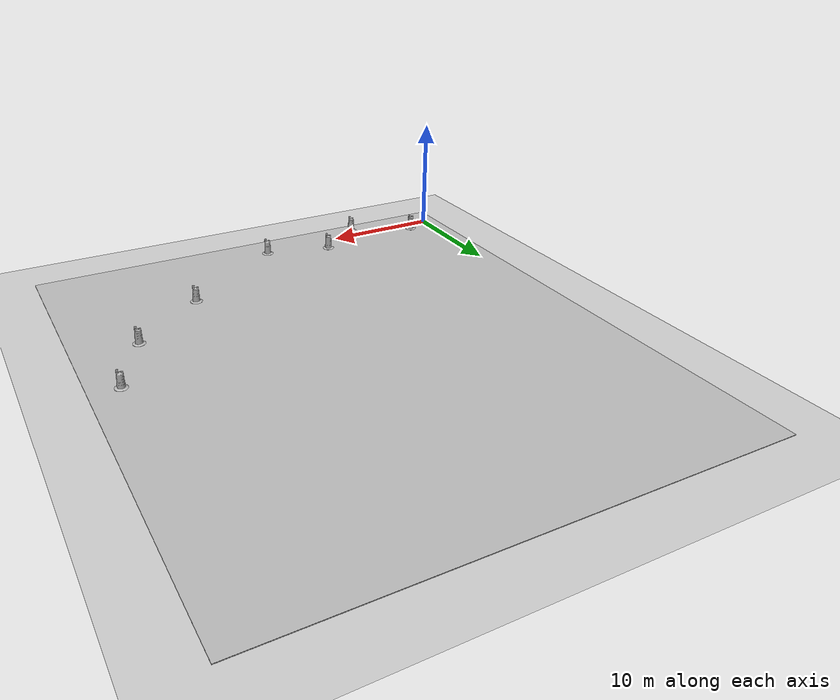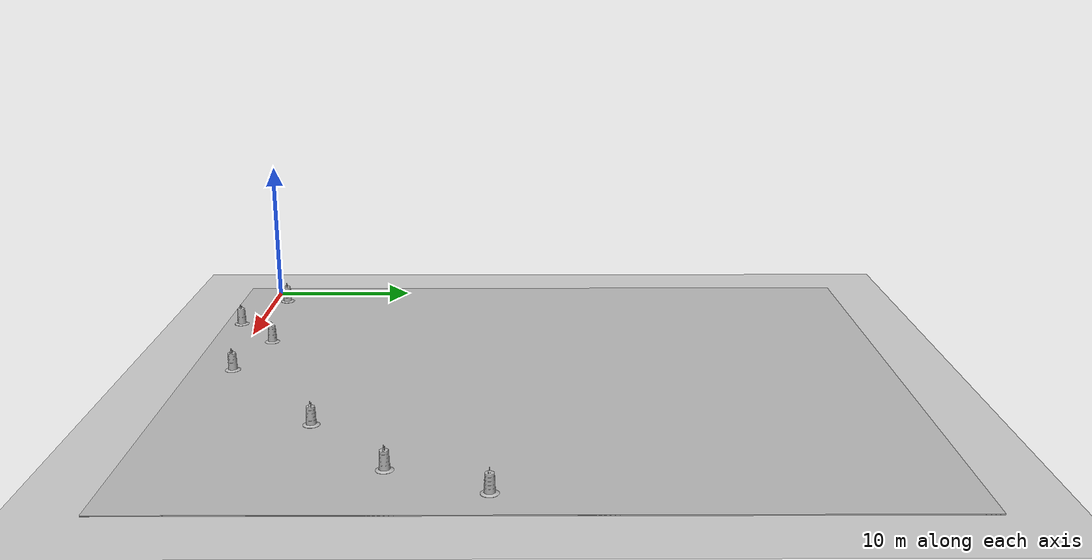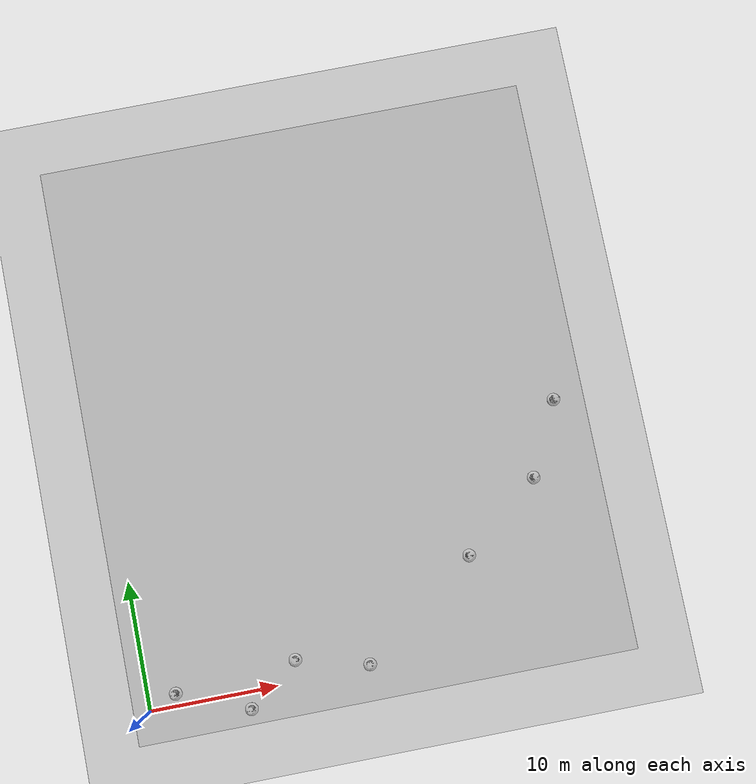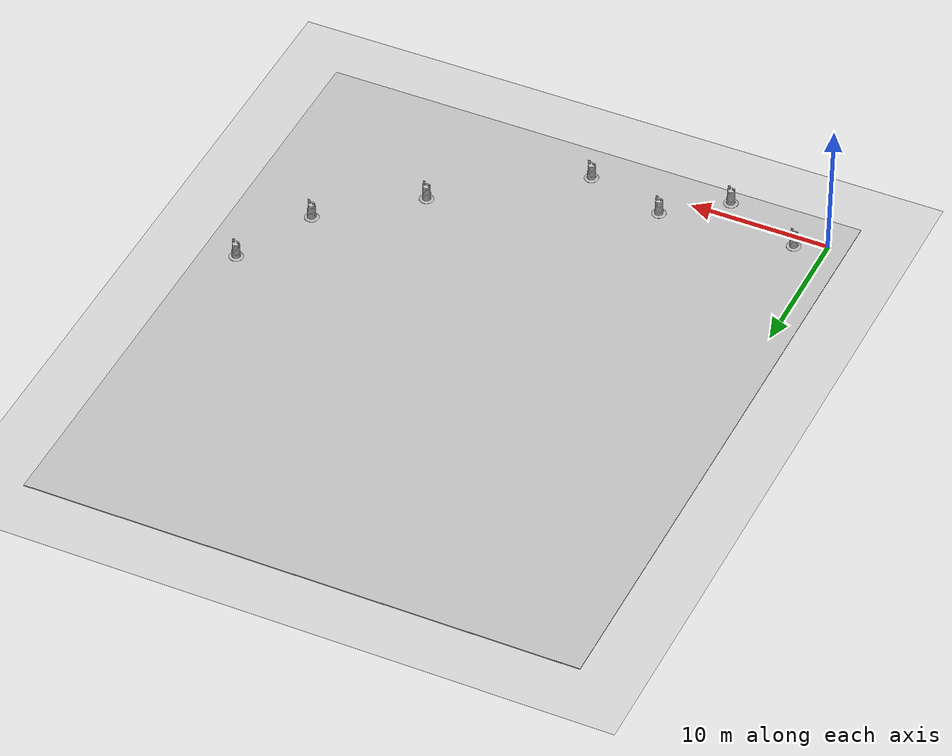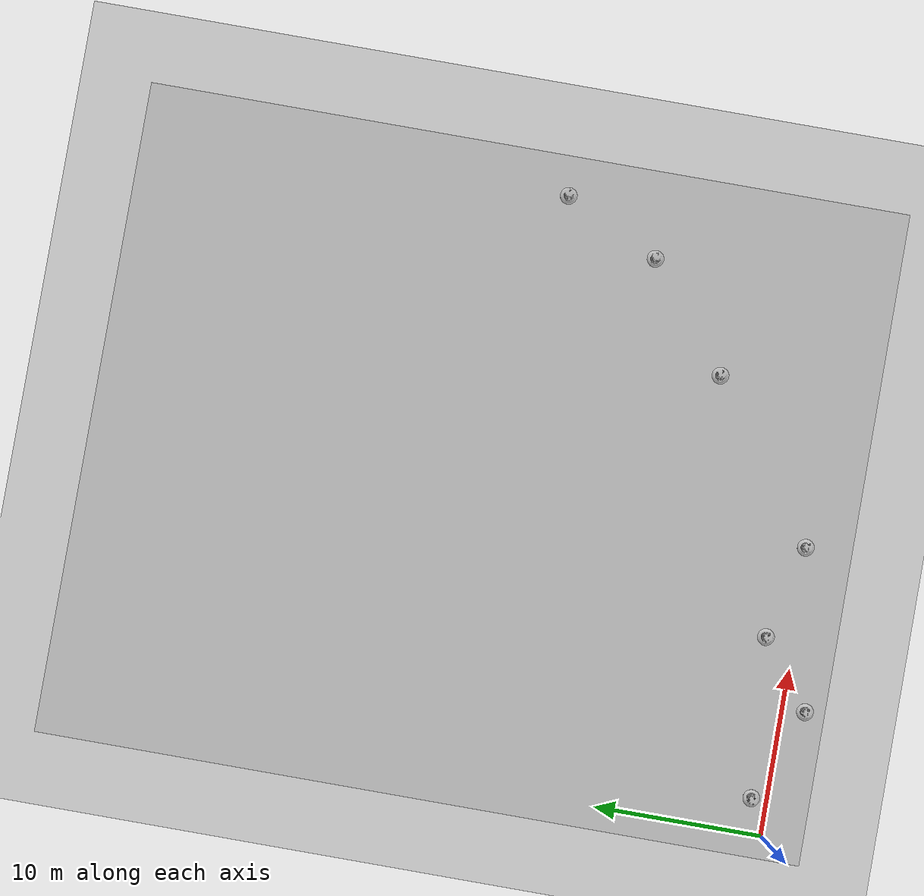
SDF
<sdf version="1.7">
 <world name="default">
  <light name="sun" type="directional">
   <pose>0 0 10 0 -0 0</pose>
   <diffuse>0.8 0.8 0.8 1</diffuse>
   <specular>0.2 0.2 0.2 1</specular>
   <attenuation>
    <range>1000</range>
    <constant>0.9</constant>
    <linear>0.01</linear>
    <quadratic>0.001</quadratic>
   </attenuation>
   <direction>-0.5 0.1 -0.9</direction>
   <spot><inner_angle>0</inner_angle><outer_angle>0</outer_angle><falloff>0</falloff></spot>
  </light>
  <model name="ground_plane">
   <static>1</static>
   <link name="link">
    <collision name="collision">
     <geometry><plane><normal>0 0 1</normal><size>100 100</size></plane></geometry>
     <surface>
      <contact><collide_bitmask>65535</collide_bitmask></contact>
      <friction><ode><mu>100</mu><mu2>50</mu2></ode></friction>
     </surface>
    </collision>
    <visual name="visual">
     <cast_shadows>0</cast_shadows>
     <geometry><plane><normal>0 0 1</normal><size>100 100</size></plane></geometry>
     <material>
      <script><uri>file://media/materials/scripts/gazebo.material</uri><name>Gazebo/Grey</name></script>
     </material>
    </visual>
   </link>
  </model>
  <gravity>0 0 -9.8</gravity>
  <magnetic_field>6e-06 2.3e-05 -4.2e-05</magnetic_field>
  <atmosphere type="adiabatic"/>
  <physics type="ode">
   <max_step_size>0.001</max_step_size>
   <real_time_factor>1</real_time_factor>
   <real_time_update_rate>1000</real_time_update_rate>
  </physics>
  <scene><ambient>0.4 0.4 0.4 1</ambient><background>0.7 0.7 0.7 1</background><shadows>1</shadows></scene>
  <spherical_coordinates>
   <surface_model>EARTH_WGS84</surface_model>
   <latitude_deg>0</latitude_deg>
   <longitude_deg>0</longitude_deg>
   <elevation>0</elevation>
   <heading_deg>0</heading_deg>
  </spherical_coordinates>
  <model name="igvc_track8">
   <static>1</static>
   <link name="link">
    <collision name="collision"><geometry><box><size>45.9518 39.2355 0.0455193</size></box></geometry></collision>
    <visual name="visual">
     <cast_shadows>0</cast_shadows>
     <geometry><box><size>45.9518 39.2355 0.0455193</size></box></geometry>
     <material>
      <script>
       <uri>model://igvc_track8/materials/scripts</uri>
       <uri>model://igvc_track8/materials/textures</uri>
       <name>vrc/ground</name>
      </script>
     </material>
    </visual>
   </link>
   <link name="link2">
    <collision name="collision"><geometry><box><size>45.9518 39.2355 0.0455193</size></box></geometry></collision>
    <visual name="visual">
     <cast_shadows>0</cast_shadows>
     <geometry><box><size>45.9518 39.2355 0.063727</size></box></geometry>
     <material>
      <script>
       <uri>model://igvc_track8/materials/scripts</uri>
       <uri>model://igvc_track8/materials/textures</uri>
       <name>vrc/track</name>
      </script>
     </material>
    </visual>
   </link>
   <pose>18.275 20.469 0 0 -0 1.5708</pose>
  </model>
  <model name="Construction Barrel">
   <link name="link">
    <inertial>
     <pose>0 0 0.4 0 -0 0</pose>
     <mass>500</mass>
     <inertia><ixx>51.2096</ixx><iyy>51.2096</iyy><izz>25</izz><ixy>0</ixy><ixz>0</ixz><iyz>0</iyz></inertia>
    </inertial>
    <collision name="collision">
     <geometry><mesh><uri>model://construction_barrel/meshes/construction_barrel.dae</uri></mesh></geometry>
    </collision>
    <visual name="visual">
     <geometry><mesh><uri>model://construction_barrel/meshes/construction_barrel.dae</uri></mesh></geometry>
    </visual>
   </link>
   <pose>35.5027 17.7331 0.022758 -1e-06 -5e-06 -6e-06</pose>
  </model>
  <model name="Construction Barrel_0">
   <link name="link">
    <inertial>
     <pose>0 0 0.4 0 -0 0</pose>
     <mass>500</mass>
     <inertia><ixx>51.2096</ixx><iyy>51.2096</iyy><izz>25</izz><ixy>0</ixy><ixz>0</ixz><iyz>0</iyz></inertia>
    </inertial>
    <collision name="collision">
     <geometry><mesh><uri>model://construction_barrel/meshes/construction_barrel.dae</uri></mesh></geometry>
    </collision>
    <visual name="visual">
     <geometry><mesh><uri>model://construction_barrel/meshes/construction_barrel.dae</uri></mesh></geometry>
    </visual>
   </link>
   <pose>2.12639 0.933683 0.022759 0 -2e-06 4.4e-05</pose>
  </model>
  <model name="Construction Barrel_1">
   <link name="link">
    <inertial>
     <pose>0 0 0.4 0 -0 0</pose>
     <mass>500</mass>
     <inertia><ixx>51.2096</ixx><iyy>51.2096</iyy><izz>25</izz><ixy>0</ixy><ixz>0</ixz><iyz>0</iyz></inertia>
    </inertial>
    <collision name="collision">
     <geometry><mesh><uri>model://construction_barrel/meshes/construction_barrel.dae</uri></mesh></geometry>
    </collision>
    <visual name="visual">
     <geometry><mesh><uri>model://construction_barrel/meshes/construction_barrel.dae</uri></mesh></geometry>
    </visual>
   </link>
   <pose>7.68061 -1.33194 0.022759 4e-06 -0 4.1e-05</pose>
  </model>
  <model name="Construction Barrel_2">
   <link name="link">
    <inertial>
     <pose>0 0 0.4 0 -0 0</pose>
     <mass>500</mass>
     <inertia><ixx>51.2096</ixx><iyy>51.2096</iyy><izz>25</izz><ixy>0</ixy><ixz>0</ixz><iyz>0</iyz></inertia>
    </inertial>
    <collision name="collision">
     <geometry><mesh><uri>model://construction_barrel/meshes/construction_barrel.dae</uri></mesh></geometry>
    </collision>
    <visual name="visual">
     <geometry><mesh><uri>model://construction_barrel/meshes/construction_barrel.dae</uri></mesh></geometry>
    </visual>
   </link>
   <pose>11.6604 1.696 0.022759 3e-06 -0 4e-05</pose>
  </model>
  <model name="Construction Barrel_3">
   <link name="link">
    <inertial>
     <pose>0 0 0.4 0 -0 0</pose>
     <mass>500</mass>
     <inertia><ixx>51.2096</ixx><iyy>51.2096</iyy><izz>25</izz><ixy>0</ixy><ixz>0</ixz><iyz>0</iyz></inertia>
    </inertial>
    <collision name="collision">
     <geometry><mesh><uri>model://construction_barrel/meshes/construction_barrel.dae</uri></mesh></geometry>
    </collision>
    <visual name="visual">
     <geometry><mesh><uri>model://construction_barrel/meshes/construction_barrel.dae</uri></mesh></geometry>
    </visual>
   </link>
   <pose>17.2851 0.265648 0.022759 3e-06 1e-06 3.7e-05</pose>
  </model>
  <model name="Construction Barrel_4">
   <link name="link">
    <inertial>
     <pose>0 0 0.4 0 -0 0</pose>
     <mass>500</mass>
     <inertia><ixx>51.2096</ixx><iyy>51.2096</iyy><izz>25</izz><ixy>0</ixy><ixz>0</ixz><iyz>0</iyz></inertia>
    </inertial>
    <collision name="collision">
     <geometry><mesh><uri>model://construction_barrel/meshes/construction_barrel.dae</uri></mesh></geometry>
    </collision>
    <visual name="visual">
     <geometry><mesh><uri>model://construction_barrel/meshes/construction_barrel.dae</uri></mesh></geometry>
    </visual>
   </link>
   <pose>26.4904 6.99619 0.022759 3e-06 -0 3.7e-05</pose>
  </model>
  <model name="Construction Barrel_5">
   <link name="link">
    <inertial>
     <pose>0 0 0.4 0 -0 0</pose>
     <mass>500</mass>
     <inertia><ixx>51.2096</ixx><iyy>51.2096</iyy><izz>25</izz><ixy>0</ixy><ixz>0</ixz><iyz>0</iyz></inertia>
    </inertial>
    <collision name="collision">
     <geometry><mesh><uri>model://construction_barrel/meshes/construction_barrel.dae</uri></mesh></geometry>
    </collision>
    <visual name="visual">
     <geometry><mesh><uri>model://construction_barrel/meshes/construction_barrel.dae</uri></mesh></geometry>
    </visual>
   </link>
   <pose>32.6882 11.9946 0.022759 -1e-06 -2e-06 -1.7e-05</pose>
  </model>
 </world>
</sdf>
